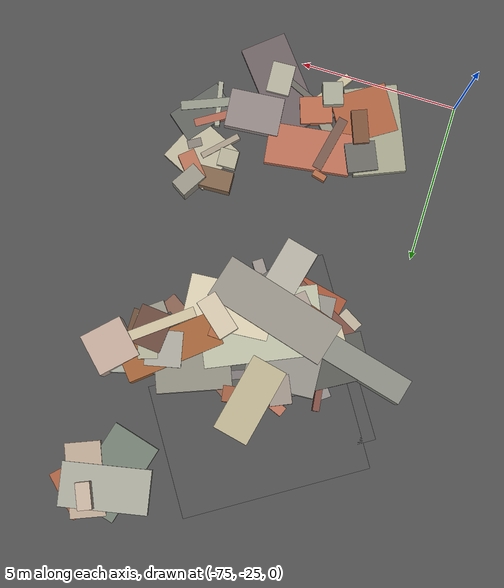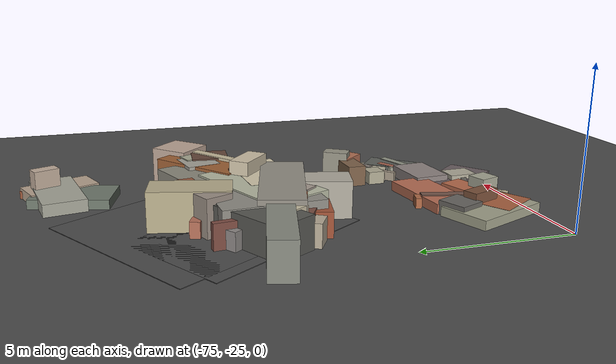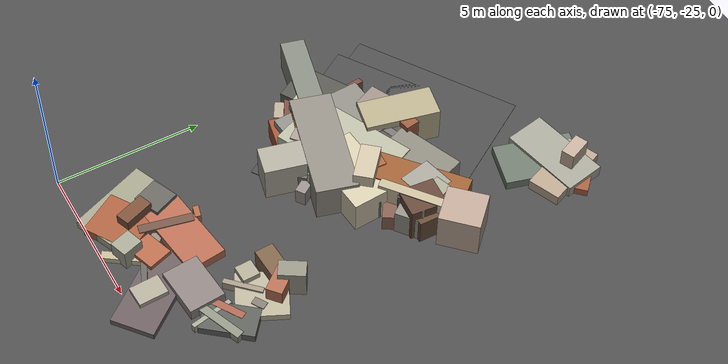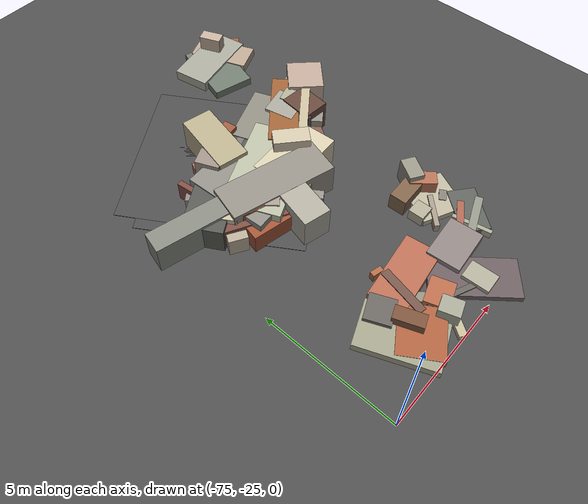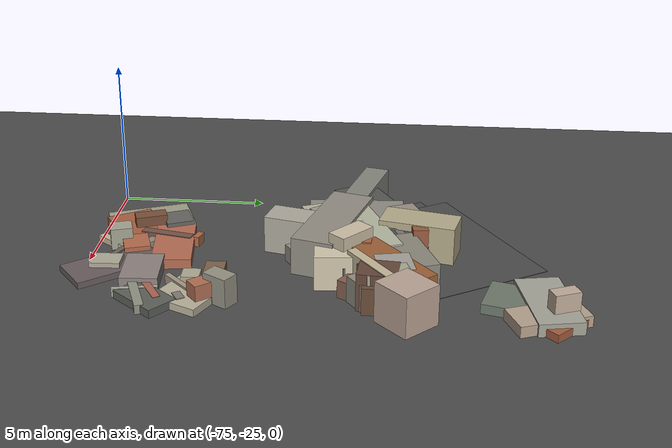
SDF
<sdf version="1.6">
 <world name="navitas_arena">
  <model name="ground_plane">
   <static>true</static>
   <link name="link">
    <collision name="collision">
     <geometry><plane><normal>0 0 1</normal><size>400 400</size></plane></geometry>
     <surface><friction><ode><mu>0.800</mu><mu2>0.800</mu2></ode></friction></surface>
    </collision>
    <visual name="visual">
     <cast_shadows>false</cast_shadows>
     <geometry><plane><normal>0 0 1</normal><size>400 400</size></plane></geometry>
     <material>
      <specular>0.04 0.04 0.04 1</specular>
      <script>
       <uri>file://media/materials/scripts/navitas_asphalt.material</uri>
       <name>Navitas/RealArenaAsphalt</name>
      </script>
     </material>
    </visual>
   </link>
  </model>
  <model name="road_kolay_3_6">
   <static>true</static>
   <pose>-72.310 -15.783 0.040 0 0 0.566</pose>
   <link name="link">
    <collision name="col"><geometry><box><size>3.820 6.000 0.020</size></box></geometry></collision>
    <visual name="vis">
     <geometry><box><size>3.820 6.000 0.020</size></box></geometry>
     <material>
      <specular>0.04 0.04 0.04 1</specular>
      <script>
       <uri>file://media/materials/scripts/navitas_asphalt.material</uri>
       <name>Navitas/RealArenaAsphalt</name>
      </script>
     </material>
    </visual>
   </link>
  </model>
  <model name="road_kolay_3_7">
   <static>true</static>
   <pose>-71.950 -13.587 0.040 0 0 2.124</pose>
   <link name="link">
    <collision name="col"><geometry><box><size>4.221 6.000 0.020</size></box></geometry></collision>
    <visual name="vis">
     <geometry><box><size>4.221 6.000 0.020</size></box></geometry>
     <material>
      <specular>0.04 0.04 0.04 1</specular>
      <script>
       <uri>file://media/materials/scripts/navitas_asphalt.material</uri>
       <name>Navitas/RealArenaAsphalt</name>
      </script>
     </material>
    </visual>
   </link>
  </model>
  <model name="blk_kolay_3_0_0">
   <static>true</static>
   <pose>-71.553 -16.028 0.000 0 0 0</pose>
   <link name="link">
    <collision name="col_0">
     <pose>1.127 1.251 0.525 0.000 0.000 3.500</pose>
     <geometry><box><size>2.705 0.271 1.051</size></box></geometry>
    </collision>
    <visual name="vis_0">
     <pose>1.127 1.251 0.525 0.000 0.000 3.500</pose>
     <geometry><box><size>2.705 0.271 1.051</size></box></geometry>
     <material>
      <ambient>0.44 0.42 0.42 1</ambient>
      <diffuse>0.48 0.45 0.45 1</diffuse>
      <specular>0.05 0.05 0.045 1</specular>
     </material>
    </visual>
    <collision name="col_1">
     <pose>-0.286 -1.756 0.316 0.000 0.000 3.016</pose>
     <geometry><box><size>0.677 0.254 0.632</size></box></geometry>
    </collision>
    <visual name="vis_1">
     <pose>-0.286 -1.756 0.316 0.000 0.000 3.016</pose>
     <geometry><box><size>0.677 0.254 0.632</size></box></geometry>
     <material>
      <ambient>0.54 0.53 0.50 1</ambient>
      <diffuse>0.58 0.57 0.54 1</diffuse>
      <specular>0.05 0.05 0.045 1</specular>
     </material>
    </visual>
    <collision name="col_2">
     <pose>1.367 -1.012 0.504 0.000 0.000 3.010</pose>
     <geometry><box><size>0.946 1.237 1.007</size></box></geometry>
    </collision>
    <visual name="vis_2">
     <pose>1.367 -1.012 0.504 0.000 0.000 3.010</pose>
     <geometry><box><size>0.946 1.237 1.007</size></box></geometry>
     <material>
      <ambient>0.38 0.25 0.22 1</ambient>
      <diffuse>0.41 0.27 0.24 1</diffuse>
      <specular>0.05 0.05 0.045 1</specular>
     </material>
    </visual>
    <collision name="col_3">
     <pose>0.964 0.065 0.528 0.000 0.000 2.479</pose>
     <geometry><box><size>1.818 0.357 1.056</size></box></geometry>
    </collision>
    <visual name="vis_3">
     <pose>0.964 0.065 0.528 0.000 0.000 2.479</pose>
     <geometry><box><size>1.818 0.357 1.056</size></box></geometry>
     <material>
      <ambient>0.63 0.60 0.55 1</ambient>
      <diffuse>0.68 0.65 0.59 1</diffuse>
      <specular>0.05 0.05 0.045 1</specular>
     </material>
    </visual>
    <collision name="col_4">
     <pose>-0.659 1.186 0.632 0.000 0.000 3.557</pose>
     <geometry><box><size>0.686 0.898 1.264</size></box></geometry>
    </collision>
    <visual name="vis_4">
     <pose>-0.659 1.186 0.632 0.000 0.000 3.557</pose>
     <geometry><box><size>0.686 0.898 1.264</size></box></geometry>
     <material>
      <ambient>0.57 0.52 0.48 1</ambient>
      <diffuse>0.61 0.56 0.52 1</diffuse>
      <specular>0.05 0.05 0.045 1</specular>
     </material>
    </visual>
    <collision name="col_5">
     <pose>1.459 -0.228 0.559 0.000 0.000 1.364</pose>
     <geometry><box><size>0.659 0.351 1.118</size></box></geometry>
    </collision>
    <visual name="vis_5">
     <pose>1.459 -0.228 0.559 0.000 0.000 1.364</pose>
     <geometry><box><size>0.659 0.351 1.118</size></box></geometry>
     <material>
      <ambient>0.60 0.59 0.56 1</ambient>
      <diffuse>0.65 0.64 0.60 1</diffuse>
      <specular>0.05 0.05 0.045 1</specular>
     </material>
    </visual>
    <collision name="col_6">
     <pose>1.529 -0.818 0.570 0.000 0.000 3.211</pose>
     <geometry><box><size>2.683 1.547 1.141</size></box></geometry>
    </collision>
    <visual name="vis_6">
     <pose>1.529 -0.818 0.570 0.000 0.000 3.211</pose>
     <geometry><box><size>2.683 1.547 1.141</size></box></geometry>
     <material>
      <ambient>0.76 0.73 0.63 1</ambient>
      <diffuse>0.83 0.79 0.68 1</diffuse>
      <specular>0.05 0.05 0.045 1</specular>
     </material>
    </visual>
    <collision name="col_7">
     <pose>-0.768 1.701 0.280 0.000 0.000 2.750</pose>
     <geometry><box><size>0.445 0.322 0.559</size></box></geometry>
    </collision>
    <visual name="vis_7">
     <pose>-0.768 1.701 0.280 0.000 0.000 2.750</pose>
     <geometry><box><size>0.445 0.322 0.559</size></box></geometry>
     <material>
      <ambient>0.66 0.41 0.32 1</ambient>
      <diffuse>0.71 0.44 0.35 1</diffuse>
      <specular>0.05 0.05 0.045 1</specular>
     </material>
    </visual>
   </link>
  </model>
  <model name="blk_kolay_3_0_1">
   <static>true</static>
   <pose>-70.984 -16.722 0.000 0 0 0</pose>
   <link name="link">
    <collision name="col_0">
     <pose>0.410 0.645 0.484 0.000 0.000 0.836</pose>
     <geometry><box><size>3.100 1.603 0.968</size></box></geometry>
    </collision>
    <visual name="vis_0">
     <pose>0.410 0.645 0.484 0.000 0.000 0.836</pose>
     <geometry><box><size>3.100 1.603 0.968</size></box></geometry>
     <material>
      <ambient>0.60 0.56 0.53 1</ambient>
      <diffuse>0.65 0.61 0.57 1</diffuse>
      <specular>0.05 0.05 0.045 1</specular>
     </material>
    </visual>
    <collision name="col_1">
     <pose>1.084 -0.410 0.533 0.000 0.000 -0.488</pose>
     <geometry><box><size>0.261 0.567 1.067</size></box></geometry>
    </collision>
    <visual name="vis_1">
     <pose>1.084 -0.410 0.533 0.000 0.000 -0.488</pose>
     <geometry><box><size>0.261 0.567 1.067</size></box></geometry>
     <material>
      <ambient>0.64 0.62 0.54 1</ambient>
      <diffuse>0.70 0.67 0.58 1</diffuse>
      <specular>0.05 0.05 0.045 1</specular>
     </material>
    </visual>
    <collision name="col_2">
     <pose>0.041 -0.503 0.348 0.000 0.000 0.858</pose>
     <geometry><box><size>2.755 1.544 0.695</size></box></geometry>
    </collision>
    <visual name="vis_2">
     <pose>0.041 -0.503 0.348 0.000 0.000 0.858</pose>
     <geometry><box><size>2.755 1.544 0.695</size></box></geometry>
     <material>
      <ambient>0.39 0.39 0.36 1</ambient>
      <diffuse>0.42 0.42 0.39 1</diffuse>
      <specular>0.05 0.05 0.045 1</specular>
     </material>
    </visual>
    <collision name="col_3">
     <pose>0.092 -0.258 0.503 0.000 0.000 1.359</pose>
     <geometry><box><size>1.287 1.053 1.006</size></box></geometry>
    </collision>
    <visual name="vis_3">
     <pose>0.092 -0.258 0.503 0.000 0.000 1.359</pose>
     <geometry><box><size>1.287 1.053 1.006</size></box></geometry>
     <material>
      <ambient>0.54 0.50 0.47 1</ambient>
      <diffuse>0.59 0.54 0.51 1</diffuse>
      <specular>0.05 0.05 0.045 1</specular>
     </material>
    </visual>
    <collision name="col_4">
     <pose>1.096 0.347 0.373 0.000 0.000 1.330</pose>
     <geometry><box><size>0.263 0.320 0.746</size></box></geometry>
    </collision>
    <visual name="vis_4">
     <pose>1.096 0.347 0.373 0.000 0.000 1.330</pose>
     <geometry><box><size>0.263 0.320 0.746</size></box></geometry>
     <material>
      <ambient>0.70 0.61 0.53 1</ambient>
      <diffuse>0.75 0.66 0.58 1</diffuse>
      <specular>0.05 0.05 0.045 1</specular>
     </material>
    </visual>
    <collision name="col_5">
     <pose>-0.385 0.287 0.281 0.000 0.000 1.505</pose>
     <geometry><box><size>3.215 1.407 0.561</size></box></geometry>
    </collision>
    <visual name="vis_5">
     <pose>-0.385 0.287 0.281 0.000 0.000 1.505</pose>
     <geometry><box><size>3.215 1.407 0.561</size></box></geometry>
     <material>
      <ambient>0.43 0.31 0.24 1</ambient>
      <diffuse>0.46 0.34 0.25 1</diffuse>
      <specular>0.05 0.05 0.045 1</specular>
     </material>
    </visual>
    <collision name="col_6">
     <pose>-0.348 -1.217 0.625 0.000 0.000 1.329</pose>
     <geometry><box><size>2.751 1.037 1.251</size></box></geometry>
    </collision>
    <visual name="vis_6">
     <pose>-0.348 -1.217 0.625 0.000 0.000 1.329</pose>
     <geometry><box><size>2.751 1.037 1.251</size></box></geometry>
     <material>
      <ambient>0.63 0.62 0.57 1</ambient>
      <diffuse>0.69 0.67 0.62 1</diffuse>
      <specular>0.05 0.05 0.045 1</specular>
     </material>
    </visual>
    <collision name="col_7">
     <pose>0.455 -1.173 0.493 0.000 0.000 1.824</pose>
     <geometry><box><size>0.388 0.398 0.987</size></box></geometry>
    </collision>
    <visual name="vis_7">
     <pose>0.455 -1.173 0.493 0.000 0.000 1.824</pose>
     <geometry><box><size>0.388 0.398 0.987</size></box></geometry>
     <material>
      <ambient>0.65 0.62 0.54 1</ambient>
      <diffuse>0.71 0.67 0.58 1</diffuse>
      <specular>0.05 0.05 0.045 1</specular>
     </material>
    </visual>
   </link>
  </model>
  <model name="blk_kolay_3_0_2">
   <static>true</static>
   <pose>-72.689 -16.175 0.000 0 0 0</pose>
   <link name="link">
    <collision name="col_0">
     <pose>0.570 -1.505 0.596 0.000 0.000 2.264</pose>
     <geometry><box><size>0.504 0.363 1.193</size></box></geometry>
    </collision>
    <visual name="vis_0">
     <pose>0.570 -1.505 0.596 0.000 0.000 2.264</pose>
     <geometry><box><size>0.504 0.363 1.193</size></box></geometry>
     <material>
      <ambient>0.61 0.57 0.53 1</ambient>
      <diffuse>0.66 0.61 0.57 1</diffuse>
      <specular>0.05 0.05 0.045 1</specular>
     </material>
    </visual>
    <collision name="col_1">
     <pose>-0.681 0.838 0.425 0.000 0.000 1.695</pose>
     <geometry><box><size>1.552 0.205 0.850</size></box></geometry>
    </collision>
    <visual name="vis_1">
     <pose>-0.681 0.838 0.425 0.000 0.000 1.695</pose>
     <geometry><box><size>1.552 0.205 0.850</size></box></geometry>
     <material>
      <ambient>0.46 0.28 0.24 1</ambient>
      <diffuse>0.49 0.30 0.26 1</diffuse>
      <specular>0.05 0.05 0.045 1</specular>
     </material>
    </visual>
    <collision name="col_2">
     <pose>-1.009 -1.383 0.369 0.000 0.000 1.034</pose>
     <geometry><box><size>0.324 0.688 0.738</size></box></geometry>
    </collision>
    <visual name="vis_2">
     <pose>-1.009 -1.383 0.369 0.000 0.000 1.034</pose>
     <geometry><box><size>0.324 0.688 0.738</size></box></geometry>
     <material>
      <ambient>0.66 0.62 0.54 1</ambient>
      <diffuse>0.72 0.67 0.59 1</diffuse>
      <specular>0.05 0.05 0.045 1</specular>
     </material>
    </visual>
    <collision name="col_3">
     <pose>0.739 -0.838 0.285 0.000 0.000 2.015</pose>
     <geometry><box><size>1.577 0.692 0.569</size></box></geometry>
    </collision>
    <visual name="vis_3">
     <pose>0.739 -0.838 0.285 0.000 0.000 2.015</pose>
     <geometry><box><size>1.577 0.692 0.569</size></box></geometry>
     <material>
      <ambient>0.28 0.31 0.28 1</ambient>
      <diffuse>0.30 0.33 0.30 1</diffuse>
      <specular>0.05 0.05 0.045 1</specular>
     </material>
    </visual>
    <collision name="col_4">
     <pose>-0.052 0.621 0.393 0.000 0.000 2.695</pose>
     <geometry><box><size>0.629 0.552 0.785</size></box></geometry>
    </collision>
    <visual name="vis_4">
     <pose>-0.052 0.621 0.393 0.000 0.000 2.695</pose>
     <geometry><box><size>0.629 0.552 0.785</size></box></geometry>
     <material>
      <ambient>0.37 0.40 0.35 1</ambient>
      <diffuse>0.40 0.43 0.37 1</diffuse>
      <specular>0.05 0.05 0.045 1</specular>
     </material>
    </visual>
    <collision name="col_5">
     <pose>-0.797 -0.847 0.547 0.000 0.000 2.121</pose>
     <geometry><box><size>0.539 0.249 1.094</size></box></geometry>
    </collision>
    <visual name="vis_5">
     <pose>-0.797 -0.847 0.547 0.000 0.000 2.121</pose>
     <geometry><box><size>0.539 0.249 1.094</size></box></geometry>
     <material>
      <ambient>0.73 0.69 0.59 1</ambient>
      <diffuse>0.79 0.75 0.64 1</diffuse>
      <specular>0.05 0.05 0.045 1</specular>
     </material>
    </visual>
    <collision name="col_6">
     <pose>0.861 -0.559 0.300 0.000 0.000 2.732</pose>
     <geometry><box><size>1.709 0.281 0.599</size></box></geometry>
    </collision>
    <visual name="vis_6">
     <pose>0.861 -0.559 0.300 0.000 0.000 2.732</pose>
     <geometry><box><size>1.709 0.281 0.599</size></box></geometry>
     <material>
      <ambient>0.53 0.51 0.48 1</ambient>
      <diffuse>0.57 0.55 0.52 1</diffuse>
      <specular>0.05 0.05 0.045 1</specular>
     </material>
    </visual>
   </link>
  </model>
  <model name="blk_kolay_3_0_3">
   <static>true</static>
   <pose>-71.087 -15.927 0.000 0 0 0</pose>
   <link name="link">
    <collision name="col_0">
     <pose>1.318 -0.535 0.793 0.000 0.000 0.853</pose>
     <geometry><box><size>0.656 1.318 1.586</size></box></geometry>
    </collision>
    <visual name="vis_0">
     <pose>1.318 -0.535 0.793 0.000 0.000 0.853</pose>
     <geometry><box><size>0.656 1.318 1.586</size></box></geometry>
     <material>
      <ambient>0.75 0.70 0.61 1</ambient>
      <diffuse>0.81 0.76 0.66 1</diffuse>
      <specular>0.05 0.05 0.045 1</specular>
     </material>
    </visual>
    <collision name="col_1">
     <pose>-0.801 -0.398 0.453 0.000 0.000 2.889</pose>
     <geometry><box><size>0.636 0.653 0.906</size></box></geometry>
    </collision>
    <visual name="vis_1">
     <pose>-0.801 -0.398 0.453 0.000 0.000 2.889</pose>
     <geometry><box><size>0.636 0.653 0.906</size></box></geometry>
     <material>
      <ambient>0.43 0.30 0.23 1</ambient>
      <diffuse>0.46 0.33 0.25 1</diffuse>
      <specular>0.05 0.05 0.045 1</specular>
     </material>
    </visual>
    <collision name="col_2">
     <pose>-1.197 -1.096 0.439 0.000 0.000 2.647</pose>
     <geometry><box><size>3.046 1.943 0.879</size></box></geometry>
    </collision>
    <visual name="vis_2">
     <pose>-1.197 -1.096 0.439 0.000 0.000 2.647</pose>
     <geometry><box><size>3.046 1.943 0.879</size></box></geometry>
     <material>
      <ambient>0.45 0.29 0.24 1</ambient>
      <diffuse>0.48 0.31 0.26 1</diffuse>
      <specular>0.05 0.05 0.045 1</specular>
     </material>
    </visual>
    <collision name="col_3">
     <pose>-0.981 -0.480 0.543 0.000 0.000 1.627</pose>
     <geometry><box><size>3.155 2.226 1.086</size></box></geometry>
    </collision>
    <visual name="vis_3">
     <pose>-0.981 -0.480 0.543 0.000 0.000 1.627</pose>
     <geometry><box><size>3.155 2.226 1.086</size></box></geometry>
     <material>
      <ambient>0.52 0.51 0.48 1</ambient>
      <diffuse>0.56 0.55 0.52 1</diffuse>
      <specular>0.05 0.05 0.045 1</specular>
     </material>
    </visual>
    <collision name="col_4">
     <pose>1.426 0.616 0.299 0.000 0.000 2.567</pose>
     <geometry><box><size>3.965 0.943 0.598</size></box></geometry>
    </collision>
    <visual name="vis_4">
     <pose>1.426 0.616 0.299 0.000 0.000 2.567</pose>
     <geometry><box><size>3.965 0.943 0.598</size></box></geometry>
     <material>
      <ambient>0.48 0.35 0.29 1</ambient>
      <diffuse>0.52 0.37 0.31 1</diffuse>
      <specular>0.05 0.05 0.045 1</specular>
     </material>
    </visual>
    <collision name="col_5">
     <pose>0.003 1.578 0.633 0.000 0.000 3.299</pose>
     <geometry><box><size>1.019 0.493 1.266</size></box></geometry>
    </collision>
    <visual name="vis_5">
     <pose>0.003 1.578 0.633 0.000 0.000 3.299</pose>
     <geometry><box><size>1.019 0.493 1.266</size></box></geometry>
     <material>
      <ambient>0.57 0.33 0.23 1</ambient>
      <diffuse>0.61 0.36 0.25 1</diffuse>
      <specular>0.05 0.05 0.045 1</specular>
     </material>
    </visual>
    <collision name="col_6">
     <pose>-0.031 -0.628 0.567 0.000 0.000 3.552</pose>
     <geometry><box><size>3.730 2.158 1.135</size></box></geometry>
    </collision>
    <visual name="vis_6">
     <pose>-0.031 -0.628 0.567 0.000 0.000 3.552</pose>
     <geometry><box><size>3.730 2.158 1.135</size></box></geometry>
     <material>
      <ambient>0.67 0.67 0.59 1</ambient>
      <diffuse>0.72 0.73 0.64 1</diffuse>
      <specular>0.05 0.05 0.045 1</specular>
     </material>
    </visual>
    <collision name="col_7">
     <pose>-0.359 1.622 0.649 0.000 0.000 1.349</pose>
     <geometry><box><size>2.500 1.143 1.299</size></box></geometry>
    </collision>
    <visual name="vis_7">
     <pose>-0.359 1.622 0.649 0.000 0.000 1.349</pose>
     <geometry><box><size>2.500 1.143 1.299</size></box></geometry>
     <material>
      <ambient>0.67 0.63 0.51 1</ambient>
      <diffuse>0.72 0.68 0.55 1</diffuse>
      <specular>0.05 0.05 0.045 1</specular>
     </material>
    </visual>
    <collision name="col_8">
     <pose>-0.306 -1.213 0.628 0.000 0.000 2.864</pose>
     <geometry><box><size>3.978 1.403 1.255</size></box></geometry>
    </collision>
    <visual name="vis_8">
     <pose>-0.306 -1.213 0.628 0.000 0.000 2.864</pose>
     <geometry><box><size>3.978 1.403 1.255</size></box></geometry>
     <material>
      <ambient>0.53 0.52 0.48 1</ambient>
      <diffuse>0.58 0.56 0.52 1</diffuse>
      <specular>0.05 0.05 0.045 1</specular>
     </material>
    </visual>
   </link>
  </model>
  <model name="blk_kolay_3_0_5">
   <static>true</static>
   <pose>-67.610 -15.198 0.000 0 0 0</pose>
   <link name="link">
    <collision name="col_0">
     <pose>-0.155 -0.375 0.587 0.000 0.000 1.346</pose>
     <geometry><box><size>0.578 0.487 1.174</size></box></geometry>
    </collision>
    <visual name="vis_0">
     <pose>-0.155 -0.375 0.587 0.000 0.000 1.346</pose>
     <geometry><box><size>0.578 0.487 1.174</size></box></geometry>
     <material>
      <ambient>0.62 0.33 0.23 1</ambient>
      <diffuse>0.66 0.36 0.25 1</diffuse>
      <specular>0.05 0.05 0.045 1</specular>
     </material>
    </visual>
    <collision name="col_1">
     <pose>-0.553 -0.516 0.635 0.000 0.000 3.794</pose>
     <geometry><box><size>2.273 0.321 1.269</size></box></geometry>
    </collision>
    <visual name="vis_1">
     <pose>-0.553 -0.516 0.635 0.000 0.000 3.794</pose>
     <geometry><box><size>2.273 0.321 1.269</size></box></geometry>
     <material>
      <ambient>0.72 0.68 0.57 1</ambient>
      <diffuse>0.78 0.73 0.61 1</diffuse>
      <specular>0.05 0.05 0.045 1</specular>
     </material>
    </visual>
    <collision name="col_2">
     <pose>0.718 0.541 0.667 0.000 0.000 3.919</pose>
     <geometry><box><size>1.350 1.324 1.335</size></box></geometry>
    </collision>
    <visual name="vis_2">
     <pose>0.718 0.541 0.667 0.000 0.000 3.919</pose>
     <geometry><box><size>1.350 1.324 1.335</size></box></geometry>
     <material>
      <ambient>0.68 0.60 0.55 1</ambient>
      <diffuse>0.74 0.65 0.59 1</diffuse>
      <specular>0.05 0.05 0.045 1</specular>
     </material>
    </visual>
    <collision name="col_3">
     <pose>-0.403 0.320 0.549 0.000 0.000 1.557</pose>
     <geometry><box><size>0.455 0.299 1.099</size></box></geometry>
    </collision>
    <visual name="vis_3">
     <pose>-0.403 0.320 0.549 0.000 0.000 1.557</pose>
     <geometry><box><size>0.455 0.299 1.099</size></box></geometry>
     <material>
      <ambient>0.49 0.32 0.29 1</ambient>
      <diffuse>0.52 0.34 0.31 1</diffuse>
      <specular>0.05 0.05 0.045 1</specular>
     </material>
    </visual>
    <collision name="col_4">
     <pose>-0.864 0.141 0.594 0.000 0.000 1.783</pose>
     <geometry><box><size>1.112 1.131 1.188</size></box></geometry>
    </collision>
    <visual name="vis_4">
     <pose>-0.864 0.141 0.594 0.000 0.000 1.783</pose>
     <geometry><box><size>1.112 1.131 1.188</size></box></geometry>
     <material>
      <ambient>0.60 0.60 0.56 1</ambient>
      <diffuse>0.65 0.64 0.60 1</diffuse>
      <specular>0.05 0.05 0.045 1</specular>
     </material>
    </visual>
    <collision name="col_5">
     <pose>-0.287 -0.071 0.613 0.000 0.000 1.875</pose>
     <geometry><box><size>1.376 0.615 1.227</size></box></geometry>
    </collision>
    <visual name="vis_5">
     <pose>-0.287 -0.071 0.613 0.000 0.000 1.875</pose>
     <geometry><box><size>1.376 0.615 1.227</size></box></geometry>
     <material>
      <ambient>0.62 0.62 0.54 1</ambient>
      <diffuse>0.67 0.67 0.58 1</diffuse>
      <specular>0.05 0.05 0.045 1</specular>
     </material>
    </visual>
    <collision name="col_6">
     <pose>-0.318 -0.327 0.618 0.000 0.000 1.478</pose>
     <geometry><box><size>1.220 1.041 1.235</size></box></geometry>
    </collision>
    <visual name="vis_6">
     <pose>-0.318 -0.327 0.618 0.000 0.000 1.478</pose>
     <geometry><box><size>1.220 1.041 1.235</size></box></geometry>
     <material>
      <ambient>0.37 0.26 0.21 1</ambient>
      <diffuse>0.40 0.28 0.23 1</diffuse>
      <specular>0.05 0.05 0.045 1</specular>
     </material>
    </visual>
    <collision name="col_7">
     <pose>-0.196 -0.367 0.446 0.000 0.000 1.556</pose>
     <geometry><box><size>0.851 1.169 0.891</size></box></geometry>
    </collision>
    <visual name="vis_7">
     <pose>-0.196 -0.367 0.446 0.000 0.000 1.556</pose>
     <geometry><box><size>0.851 1.169 0.891</size></box></geometry>
     <material>
      <ambient>0.38 0.28 0.21 1</ambient>
      <diffuse>0.41 0.30 0.22 1</diffuse>
      <specular>0.05 0.05 0.045 1</specular>
     </material>
    </visual>
    <collision name="col_8">
     <pose>-0.340 0.822 0.350 0.000 0.000 1.287</pose>
     <geometry><box><size>0.669 0.373 0.701</size></box></geometry>
    </collision>
    <visual name="vis_8">
     <pose>-0.340 0.822 0.350 0.000 0.000 1.287</pose>
     <geometry><box><size>0.669 0.373 0.701</size></box></geometry>
     <material>
      <ambient>0.34 0.36 0.35 1</ambient>
      <diffuse>0.37 0.39 0.38 1</diffuse>
      <specular>0.05 0.05 0.045 1</specular>
     </material>
    </visual>
    <collision name="col_9">
     <pose>-0.817 0.449 0.456 0.000 0.000 3.391</pose>
     <geometry><box><size>3.078 0.973 0.912</size></box></geometry>
    </collision>
    <visual name="vis_9">
     <pose>-0.817 0.449 0.456 0.000 0.000 3.391</pose>
     <geometry><box><size>3.078 0.973 0.912</size></box></geometry>
     <material>
      <ambient>0.59 0.59 0.55 1</ambient>
      <diffuse>0.63 0.64 0.59 1</diffuse>
      <specular>0.05 0.05 0.045 1</specular>
     </material>
    </visual>
   </link>
  </model>
  <model name="blk_kolay_3_0_7">
   <static>true</static>
   <pose>-68.935 -15.774 0.000 0 0 0</pose>
   <link name="link">
    <collision name="col_0">
     <pose>0.269 0.668 0.408 0.000 0.000 1.768</pose>
     <geometry><box><size>0.643 0.246 0.817</size></box></geometry>
    </collision>
    <visual name="vis_0">
     <pose>0.269 0.668 0.408 0.000 0.000 1.768</pose>
     <geometry><box><size>0.643 0.246 0.817</size></box></geometry>
     <material>
      <ambient>0.61 0.32 0.25 1</ambient>
      <diffuse>0.66 0.35 0.27 1</diffuse>
      <specular>0.05 0.05 0.045 1</specular>
     </material>
    </visual>
    <collision name="col_1">
     <pose>0.492 -0.030 0.569 0.000 0.000 2.549</pose>
     <geometry><box><size>0.626 0.522 1.139</size></box></geometry>
    </collision>
    <visual name="vis_1">
     <pose>0.492 -0.030 0.569 0.000 0.000 2.549</pose>
     <geometry><box><size>0.626 0.522 1.139</size></box></geometry>
     <material>
      <ambient>0.29 0.29 0.27 1</ambient>
      <diffuse>0.31 0.31 0.29 1</diffuse>
      <specular>0.05 0.05 0.045 1</specular>
     </material>
    </visual>
    <collision name="col_2">
     <pose>1.077 -0.223 0.443 0.000 0.000 3.784</pose>
     <geometry><box><size>0.828 0.592 0.886</size></box></geometry>
    </collision>
    <visual name="vis_2">
     <pose>1.077 -0.223 0.443 0.000 0.000 3.784</pose>
     <geometry><box><size>0.828 0.592 0.886</size></box></geometry>
     <material>
      <ambient>0.53 0.52 0.48 1</ambient>
      <diffuse>0.57 0.56 0.51 1</diffuse>
      <specular>0.05 0.05 0.045 1</specular>
     </material>
    </visual>
    <collision name="col_3">
     <pose>-0.931 -0.279 0.611 0.000 0.000 1.515</pose>
     <geometry><box><size>0.483 0.427 1.222</size></box></geometry>
    </collision>
    <visual name="vis_3">
     <pose>-0.931 -0.279 0.611 0.000 0.000 1.515</pose>
     <geometry><box><size>0.483 0.427 1.222</size></box></geometry>
     <material>
      <ambient>0.61 0.37 0.24 1</ambient>
      <diffuse>0.66 0.40 0.26 1</diffuse>
      <specular>0.05 0.05 0.045 1</specular>
     </material>
    </visual>
    <collision name="col_4">
     <pose>-0.077 -0.947 0.385 0.000 0.000 3.852</pose>
     <geometry><box><size>0.683 0.290 0.769</size></box></geometry>
    </collision>
    <visual name="vis_4">
     <pose>-0.077 -0.947 0.385 0.000 0.000 3.852</pose>
     <geometry><box><size>0.683 0.290 0.769</size></box></geometry>
     <material>
      <ambient>0.45 0.46 0.42 1</ambient>
      <diffuse>0.48 0.50 0.45 1</diffuse>
      <specular>0.05 0.05 0.045 1</specular>
     </material>
    </visual>
    <collision name="col_5">
     <pose>-0.521 0.937 0.538 0.000 0.000 3.505</pose>
     <geometry><box><size>2.324 1.610 1.076</size></box></geometry>
    </collision>
    <visual name="vis_5">
     <pose>-0.521 0.937 0.538 0.000 0.000 3.505</pose>
     <geometry><box><size>2.324 1.610 1.076</size></box></geometry>
     <material>
      <ambient>0.51 0.50 0.45 1</ambient>
      <diffuse>0.55 0.54 0.49 1</diffuse>
      <specular>0.05 0.05 0.045 1</specular>
     </material>
    </visual>
    <collision name="col_6">
     <pose>0.288 0.615 0.591 0.000 0.000 3.826</pose>
     <geometry><box><size>3.100 1.068 1.182</size></box></geometry>
    </collision>
    <visual name="vis_6">
     <pose>0.288 0.615 0.591 0.000 0.000 3.826</pose>
     <geometry><box><size>3.100 1.068 1.182</size></box></geometry>
     <material>
      <ambient>0.57 0.35 0.20 1</ambient>
      <diffuse>0.62 0.38 0.21 1</diffuse>
      <specular>0.05 0.05 0.045 1</specular>
     </material>
    </visual>
    <collision name="col_7">
     <pose>-0.352 0.443 0.373 0.000 0.000 3.463</pose>
     <geometry><box><size>4.259 1.015 0.746</size></box></geometry>
    </collision>
    <visual name="vis_7">
     <pose>-0.352 0.443 0.373 0.000 0.000 3.463</pose>
     <geometry><box><size>4.259 1.015 0.746</size></box></geometry>
     <material>
      <ambient>0.56 0.56 0.49 1</ambient>
      <diffuse>0.61 0.60 0.53 1</diffuse>
      <specular>0.05 0.05 0.045 1</specular>
     </material>
    </visual>
   </link>
  </model>
  <model name="blk_kolay_3_0_8">
   <static>true</static>
   <pose>-72.564 -16.231 0.000 0 0 0</pose>
   <link name="link">
    <collision name="col_0">
     <pose>-0.958 1.067 0.315 0.000 0.000 0.646</pose>
     <geometry><box><size>0.411 0.371 0.631</size></box></geometry>
    </collision>
    <visual name="vis_0">
     <pose>-0.958 1.067 0.315 0.000 0.000 0.646</pose>
     <geometry><box><size>0.411 0.371 0.631</size></box></geometry>
     <material>
      <ambient>0.51 0.49 0.48 1</ambient>
      <diffuse>0.55 0.53 0.52 1</diffuse>
      <specular>0.05 0.05 0.045 1</specular>
     </material>
    </visual>
    <collision name="col_1">
     <pose>-0.037 0.627 0.522 0.000 0.000 0.525</pose>
     <geometry><box><size>4.241 1.456 1.045</size></box></geometry>
    </collision>
    <visual name="vis_1">
     <pose>-0.037 0.627 0.522 0.000 0.000 0.525</pose>
     <geometry><box><size>4.241 1.456 1.045</size></box></geometry>
     <material>
      <ambient>0.32 0.31 0.29 1</ambient>
      <diffuse>0.34 0.34 0.32 1</diffuse>
      <specular>0.05 0.05 0.045 1</specular>
     </material>
    </visual>
    <collision name="col_2">
     <pose>1.184 -0.876 0.289 0.000 0.000 2.163</pose>
     <geometry><box><size>3.454 0.351 0.579</size></box></geometry>
    </collision>
    <visual name="vis_2">
     <pose>1.184 -0.876 0.289 0.000 0.000 2.163</pose>
     <geometry><box><size>3.454 0.351 0.579</size></box></geometry>
     <material>
      <ambient>0.55 0.52 0.50 1</ambient>
      <diffuse>0.59 0.56 0.54 1</diffuse>
      <specular>0.05 0.05 0.045 1</specular>
     </material>
    </visual>
    <collision name="col_3">
     <pose>0.420 1.312 0.591 0.000 0.000 0.534</pose>
     <geometry><box><size>0.597 0.568 1.181</size></box></geometry>
    </collision>
    <visual name="vis_3">
     <pose>0.420 1.312 0.591 0.000 0.000 0.534</pose>
     <geometry><box><size>0.597 0.568 1.181</size></box></geometry>
     <material>
      <ambient>0.68 0.64 0.57 1</ambient>
      <diffuse>0.73 0.69 0.61 1</diffuse>
      <specular>0.05 0.05 0.045 1</specular>
     </material>
    </visual>
    <collision name="col_4">
     <pose>0.425 0.999 0.619 0.000 0.000 0.524</pose>
     <geometry><box><size>0.244 0.194 1.238</size></box></geometry>
    </collision>
    <visual name="vis_4">
     <pose>0.425 0.999 0.619 0.000 0.000 0.524</pose>
     <geometry><box><size>0.244 0.194 1.238</size></box></geometry>
     <material>
      <ambient>0.62 0.37 0.25 1</ambient>
      <diffuse>0.67 0.40 0.27 1</diffuse>
      <specular>0.05 0.05 0.045 1</specular>
     </material>
    </visual>
    <collision name="col_5">
     <pose>0.113 -0.794 0.573 0.000 0.000 2.824</pose>
     <geometry><box><size>1.206 1.123 1.146</size></box></geometry>
    </collision>
    <visual name="vis_5">
     <pose>0.113 -0.794 0.573 0.000 0.000 2.824</pose>
     <geometry><box><size>1.206 1.123 1.146</size></box></geometry>
     <material>
      <ambient>0.55 0.31 0.19 1</ambient>
      <diffuse>0.59 0.33 0.20 1</diffuse>
      <specular>0.05 0.05 0.045 1</specular>
     </material>
    </visual>
    <collision name="col_6">
     <pose>-1.386 -0.150 0.580 0.000 0.000 2.887</pose>
     <geometry><box><size>4.032 0.823 1.160</size></box></geometry>
    </collision>
    <visual name="vis_6">
     <pose>-1.386 -0.150 0.580 0.000 0.000 2.887</pose>
     <geometry><box><size>4.032 0.823 1.160</size></box></geometry>
     <material>
      <ambient>0.49 0.50 0.46 1</ambient>
      <diffuse>0.53 0.54 0.50 1</diffuse>
      <specular>0.05 0.05 0.045 1</specular>
     </material>
    </visual>
    <collision name="col_7">
     <pose>0.452 -1.099 0.403 0.000 0.000 2.924</pose>
     <geometry><box><size>2.220 2.068 0.805</size></box></geometry>
    </collision>
    <visual name="vis_7">
     <pose>0.452 -1.099 0.403 0.000 0.000 2.924</pose>
     <geometry><box><size>2.220 2.068 0.805</size></box></geometry>
     <material>
      <ambient>0.58 0.31 0.21 1</ambient>
      <diffuse>0.63 0.33 0.22 1</diffuse>
      <specular>0.05 0.05 0.045 1</specular>
     </material>
    </visual>
    <collision name="col_8">
     <pose>0.921 0.029 0.473 0.000 0.000 0.397</pose>
     <geometry><box><size>0.602 0.613 0.947</size></box></geometry>
    </collision>
    <visual name="vis_8">
     <pose>0.921 0.029 0.473 0.000 0.000 0.397</pose>
     <geometry><box><size>0.602 0.613 0.947</size></box></geometry>
     <material>
      <ambient>0.59 0.59 0.55 1</ambient>
      <diffuse>0.64 0.64 0.60 1</diffuse>
      <specular>0.05 0.05 0.045 1</specular>
     </material>
    </visual>
   </link>
  </model>
  <model name="deb_kolay_118">
   <static>true</static>
   <pose>-67.942 -20.929 0.000 0 0 0</pose>
   <link name="link">
    <collision name="col_0">
     <pose>0.194 -0.375 0.123 0.000 0.000 1.122</pose>
     <geometry><box><size>1.661 1.643 0.246</size></box></geometry>
    </collision>
    <visual name="vis_0">
     <pose>0.194 -0.375 0.123 0.000 0.000 1.122</pose>
     <geometry><box><size>1.661 1.643 0.246</size></box></geometry>
     <material>
      <ambient>0.68 0.64 0.56 1</ambient>
      <diffuse>0.73 0.70 0.61 1</diffuse>
      <specular>0.05 0.05 0.045 1</specular>
     </material>
    </visual>
    <collision name="col_1">
     <pose>-0.669 -0.427 0.220 0.000 0.000 3.170</pose>
     <geometry><box><size>0.593 0.572 0.440</size></box></geometry>
    </collision>
    <visual name="vis_1">
     <pose>-0.669 -0.427 0.220 0.000 0.000 3.170</pose>
     <geometry><box><size>0.593 0.572 0.440</size></box></geometry>
     <material>
      <ambient>0.64 0.62 0.54 1</ambient>
      <diffuse>0.69 0.67 0.58 1</diffuse>
      <specular>0.05 0.05 0.045 1</specular>
     </material>
    </visual>
    <collision name="col_2">
     <pose>0.306 0.193 0.378 0.000 0.000 2.270</pose>
     <geometry><box><size>0.973 0.540 0.756</size></box></geometry>
    </collision>
    <visual name="vis_2">
     <pose>0.306 0.193 0.378 0.000 0.000 2.270</pose>
     <geometry><box><size>0.973 0.540 0.756</size></box></geometry>
     <material>
      <ambient>0.65 0.41 0.30 1</ambient>
      <diffuse>0.70 0.44 0.33 1</diffuse>
      <specular>0.05 0.05 0.045 1</specular>
     </material>
    </visual>
    <collision name="col_3">
     <pose>0.269 0.647 0.483 0.000 0.000 1.010</pose>
     <geometry><box><size>0.880 0.559 0.967</size></box></geometry>
    </collision>
    <visual name="vis_3">
     <pose>0.269 0.647 0.483 0.000 0.000 1.010</pose>
     <geometry><box><size>0.880 0.559 0.967</size></box></geometry>
     <material>
      <ambient>0.55 0.54 0.48 1</ambient>
      <diffuse>0.59 0.58 0.52 1</diffuse>
      <specular>0.05 0.05 0.045 1</specular>
     </material>
    </visual>
    <collision name="col_4">
     <pose>0.479 -0.608 0.138 0.000 0.000 2.116</pose>
     <geometry><box><size>0.267 0.445 0.275</size></box></geometry>
    </collision>
    <visual name="vis_4">
     <pose>0.479 -0.608 0.138 0.000 0.000 2.116</pose>
     <geometry><box><size>0.267 0.445 0.275</size></box></geometry>
     <material>
      <ambient>0.48 0.45 0.42 1</ambient>
      <diffuse>0.52 0.49 0.46 1</diffuse>
      <specular>0.05 0.05 0.045 1</specular>
     </material>
    </visual>
    <collision name="col_5">
     <pose>-0.484 0.346 0.353 0.000 0.000 3.181</pose>
     <geometry><box><size>1.055 0.626 0.707</size></box></geometry>
    </collision>
    <visual name="vis_5">
     <pose>-0.484 0.346 0.353 0.000 0.000 3.181</pose>
     <geometry><box><size>1.055 0.626 0.707</size></box></geometry>
     <material>
      <ambient>0.46 0.36 0.27 1</ambient>
      <diffuse>0.50 0.39 0.29 1</diffuse>
      <specular>0.05 0.05 0.045 1</specular>
     </material>
    </visual>
    <collision name="col_6">
     <pose>-0.319 -0.750 0.158 0.000 0.000 0.784</pose>
     <geometry><box><size>1.313 0.182 0.316</size></box></geometry>
    </collision>
    <visual name="vis_6">
     <pose>-0.319 -0.750 0.158 0.000 0.000 0.784</pose>
     <geometry><box><size>1.313 0.182 0.316</size></box></geometry>
     <material>
      <ambient>0.61 0.56 0.50 1</ambient>
      <diffuse>0.65 0.60 0.53 1</diffuse>
      <specular>0.05 0.05 0.045 1</specular>
     </material>
    </visual>
   </link>
  </model>
  <model name="deb_kolay_131">
   <static>true</static>
   <pose>-67.348 -10.890 0.000 0 0 0</pose>
   <link name="link">
    <collision name="col_0">
     <pose>0.055 0.541 0.132 0.000 0.000 -0.782</pose>
     <geometry><box><size>1.592 1.605 0.263</size></box></geometry>
    </collision>
    <visual name="vis_0">
     <pose>0.055 0.541 0.132 0.000 0.000 -0.782</pose>
     <geometry><box><size>1.592 1.605 0.263</size></box></geometry>
     <material>
      <ambient>0.60 0.34 0.23 1</ambient>
      <diffuse>0.65 0.37 0.25 1</diffuse>
      <specular>0.05 0.05 0.045 1</specular>
     </material>
    </visual>
    <collision name="col_1">
     <pose>-0.587 0.449 0.208 0.000 0.000 0.186</pose>
     <geometry><box><size>2.790 1.408 0.417</size></box></geometry>
    </collision>
    <visual name="vis_1">
     <pose>-0.587 0.449 0.208 0.000 0.000 0.186</pose>
     <geometry><box><size>2.790 1.408 0.417</size></box></geometry>
     <material>
      <ambient>0.61 0.60 0.55 1</ambient>
      <diffuse>0.65 0.65 0.60 1</diffuse>
      <specular>0.05 0.05 0.045 1</specular>
     </material>
    </visual>
    <collision name="col_2">
     <pose>0.066 0.372 0.183 0.000 0.000 -1.193</pose>
     <geometry><box><size>2.327 1.118 0.366</size></box></geometry>
    </collision>
    <visual name="vis_2">
     <pose>0.066 0.372 0.183 0.000 0.000 -1.193</pose>
     <geometry><box><size>2.327 1.118 0.366</size></box></geometry>
     <material>
      <ambient>0.67 0.59 0.52 1</ambient>
      <diffuse>0.72 0.64 0.56 1</diffuse>
      <specular>0.05 0.05 0.045 1</specular>
     </material>
    </visual>
    <collision name="col_3">
     <pose>-0.086 0.820 0.508 0.000 0.000 -1.173</pose>
     <geometry><box><size>0.850 0.454 1.016</size></box></geometry>
    </collision>
    <visual name="vis_3">
     <pose>-0.086 0.820 0.508 0.000 0.000 -1.173</pose>
     <geometry><box><size>0.850 0.454 1.016</size></box></geometry>
     <material>
      <ambient>0.70 0.63 0.57 1</ambient>
      <diffuse>0.76 0.68 0.61 1</diffuse>
      <specular>0.05 0.05 0.045 1</specular>
     </material>
    </visual>
    <collision name="col_4">
     <pose>-0.717 -0.085 0.160 0.000 0.000 1.296</pose>
     <geometry><box><size>2.658 1.571 0.320</size></box></geometry>
    </collision>
    <visual name="vis_4">
     <pose>-0.717 -0.085 0.160 0.000 0.000 1.296</pose>
     <geometry><box><size>2.658 1.571 0.320</size></box></geometry>
     <material>
      <ambient>0.41 0.44 0.40 1</ambient>
      <diffuse>0.44 0.48 0.43 1</diffuse>
      <specular>0.05 0.05 0.045 1</specular>
     </material>
    </visual>
   </link>
  </model>
  <model name="deb_kolay_135">
   <static>true</static>
   <pose>-71.728 -22.402 0.000 0 0 0</pose>
   <link name="link">
    <collision name="col_0">
     <pose>0.181 -0.326 0.179 0.000 0.000 1.357</pose>
     <geometry><box><size>1.778 0.309 0.359</size></box></geometry>
    </collision>
    <visual name="vis_0">
     <pose>0.181 -0.326 0.179 0.000 0.000 1.357</pose>
     <geometry><box><size>1.778 0.309 0.359</size></box></geometry>
     <material>
      <ambient>0.42 0.32 0.26 1</ambient>
      <diffuse>0.46 0.34 0.29 1</diffuse>
      <specular>0.05 0.05 0.045 1</specular>
     </material>
    </visual>
    <collision name="col_1">
     <pose>0.216 0.729 0.171 0.000 0.000 1.323</pose>
     <geometry><box><size>0.194 0.430 0.342</size></box></geometry>
    </collision>
    <visual name="vis_1">
     <pose>0.216 0.729 0.171 0.000 0.000 1.323</pose>
     <geometry><box><size>0.194 0.430 0.342</size></box></geometry>
     <material>
      <ambient>0.64 0.39 0.26 1</ambient>
      <diffuse>0.69 0.42 0.28 1</diffuse>
      <specular>0.05 0.05 0.045 1</specular>
     </material>
    </visual>
    <collision name="col_2">
     <pose>0.015 -0.305 0.116 0.000 0.000 0.619</pose>
     <geometry><box><size>2.288 0.128 0.231</size></box></geometry>
    </collision>
    <visual name="vis_2">
     <pose>0.015 -0.305 0.116 0.000 0.000 0.619</pose>
     <geometry><box><size>2.288 0.128 0.231</size></box></geometry>
     <material>
      <ambient>0.74 0.69 0.60 1</ambient>
      <diffuse>0.80 0.75 0.65 1</diffuse>
      <specular>0.05 0.05 0.045 1</specular>
     </material>
    </visual>
    <collision name="col_3">
     <pose>0.441 -0.820 0.106 0.000 0.000 0.754</pose>
     <geometry><box><size>0.355 0.361 0.212</size></box></geometry>
    </collision>
    <visual name="vis_3">
     <pose>0.441 -0.820 0.106 0.000 0.000 0.754</pose>
     <geometry><box><size>0.355 0.361 0.212</size></box></geometry>
     <material>
      <ambient>0.53 0.51 0.46 1</ambient>
      <diffuse>0.57 0.55 0.49 1</diffuse>
      <specular>0.05 0.05 0.045 1</specular>
     </material>
    </visual>
    <collision name="col_4">
     <pose>-0.865 -0.189 0.232 0.000 0.000 1.980</pose>
     <geometry><box><size>0.927 0.955 0.464</size></box></geometry>
    </collision>
    <visual name="vis_4">
     <pose>-0.865 -0.189 0.232 0.000 0.000 1.980</pose>
     <geometry><box><size>0.927 0.955 0.464</size></box></geometry>
     <material>
      <ambient>0.38 0.37 0.35 1</ambient>
      <diffuse>0.41 0.40 0.38 1</diffuse>
      <specular>0.05 0.05 0.045 1</specular>
     </material>
    </visual>
    <collision name="col_5">
     <pose>-0.447 -0.113 0.158 0.000 0.000 0.122</pose>
     <geometry><box><size>1.676 0.154 0.317</size></box></geometry>
    </collision>
    <visual name="vis_5">
     <pose>-0.447 -0.113 0.158 0.000 0.000 0.122</pose>
     <geometry><box><size>1.676 0.154 0.317</size></box></geometry>
     <material>
      <ambient>0.53 0.51 0.47 1</ambient>
      <diffuse>0.57 0.55 0.51 1</diffuse>
      <specular>0.05 0.05 0.045 1</specular>
     </material>
    </visual>
    <collision name="col_6">
     <pose>0.766 0.009 0.163 0.000 0.000 0.129</pose>
     <geometry><box><size>2.677 1.300 0.326</size></box></geometry>
    </collision>
    <visual name="vis_6">
     <pose>0.766 0.009 0.163 0.000 0.000 0.129</pose>
     <geometry><box><size>2.677 1.300 0.326</size></box></geometry>
     <material>
      <ambient>0.67 0.40 0.31 1</ambient>
      <diffuse>0.72 0.43 0.33 1</diffuse>
      <specular>0.05 0.05 0.045 1</specular>
     </material>
    </visual>
   </link>
  </model>
  <model name="deb_kolay_162">
   <static>true</static>
   <pose>-71.772 -23.632 0.000 0 0 0</pose>
   <link name="link">
    <collision name="col_0">
     <pose>0.949 0.001 0.185 0.000 0.000 0.323</pose>
     <geometry><box><size>1.012 0.851 0.370</size></box></geometry>
    </collision>
    <visual name="vis_0">
     <pose>0.949 0.001 0.185 0.000 0.000 0.323</pose>
     <geometry><box><size>1.012 0.851 0.370</size></box></geometry>
     <material>
      <ambient>0.67 0.39 0.28 1</ambient>
      <diffuse>0.72 0.42 0.30 1</diffuse>
      <specular>0.05 0.05 0.045 1</specular>
     </material>
    </visual>
    <collision name="col_1">
     <pose>0.743 0.052 0.093 0.000 0.000 -0.049</pose>
     <geometry><box><size>0.497 0.463 0.186</size></box></geometry>
    </collision>
    <visual name="vis_1">
     <pose>0.743 0.052 0.093 0.000 0.000 -0.049</pose>
     <geometry><box><size>0.497 0.463 0.186</size></box></geometry>
     <material>
      <ambient>0.32 0.32 0.27 1</ambient>
      <diffuse>0.34 0.34 0.30 1</diffuse>
      <specular>0.05 0.05 0.045 1</specular>
     </material>
    </visual>
    <collision name="col_2">
     <pose>-0.521 -0.316 0.161 0.000 0.000 -1.010</pose>
     <geometry><box><size>1.562 1.797 0.323</size></box></geometry>
    </collision>
    <visual name="vis_2">
     <pose>-0.521 -0.316 0.161 0.000 0.000 -1.010</pose>
     <geometry><box><size>1.562 1.797 0.323</size></box></geometry>
     <material>
      <ambient>0.62 0.35 0.24 1</ambient>
      <diffuse>0.67 0.38 0.25 1</diffuse>
      <specular>0.05 0.05 0.045 1</specular>
     </material>
    </visual>
    <collision name="col_3">
     <pose>-0.524 0.172 0.336 0.000 0.000 -1.206</pose>
     <geometry><box><size>1.050 0.493 0.672</size></box></geometry>
    </collision>
    <visual name="vis_3">
     <pose>-0.524 0.172 0.336 0.000 0.000 -1.206</pose>
     <geometry><box><size>1.050 0.493 0.672</size></box></geometry>
     <material>
      <ambient>0.44 0.29 0.21 1</ambient>
      <diffuse>0.48 0.32 0.23 1</diffuse>
      <specular>0.05 0.05 0.045 1</specular>
     </material>
    </visual>
    <collision name="col_4">
     <pose>-1.002 0.074 0.157 0.000 0.000 -1.182</pose>
     <geometry><box><size>2.765 1.669 0.313</size></box></geometry>
    </collision>
    <visual name="vis_4">
     <pose>-1.002 0.074 0.157 0.000 0.000 -1.182</pose>
     <geometry><box><size>2.765 1.669 0.313</size></box></geometry>
     <material>
      <ambient>0.58 0.58 0.50 1</ambient>
      <diffuse>0.63 0.63 0.54 1</diffuse>
      <specular>0.05 0.05 0.045 1</specular>
     </material>
    </visual>
   </link>
  </model>
  <model name="deb_kolay_177">
   <static>true</static>
   <pose>-68.162 -22.660 0.000 0 0 0</pose>
   <link name="link">
    <collision name="col_0">
     <pose>-0.830 -0.341 0.205 0.000 0.000 3.224</pose>
     <geometry><box><size>1.706 1.212 0.410</size></box></geometry>
    </collision>
    <visual name="vis_0">
     <pose>-0.830 -0.341 0.205 0.000 0.000 3.224</pose>
     <geometry><box><size>1.706 1.212 0.410</size></box></geometry>
     <material>
      <ambient>0.52 0.48 0.47 1</ambient>
      <diffuse>0.56 0.52 0.51 1</diffuse>
      <specular>0.05 0.05 0.045 1</specular>
     </material>
    </visual>
    <collision name="col_1">
     <pose>0.756 0.098 0.135 0.000 0.000 4.021</pose>
     <geometry><box><size>1.767 1.031 0.270</size></box></geometry>
    </collision>
    <visual name="vis_1">
     <pose>0.756 0.098 0.135 0.000 0.000 4.021</pose>
     <geometry><box><size>1.767 1.031 0.270</size></box></geometry>
     <material>
      <ambient>0.34 0.35 0.34 1</ambient>
      <diffuse>0.37 0.38 0.36 1</diffuse>
      <specular>0.05 0.05 0.045 1</specular>
     </material>
    </visual>
    <collision name="col_2">
     <pose>0.607 -0.231 0.148 0.000 0.000 3.514</pose>
     <geometry><box><size>1.828 0.284 0.295</size></box></geometry>
    </collision>
    <visual name="vis_2">
     <pose>0.607 -0.231 0.148 0.000 0.000 3.514</pose>
     <geometry><box><size>1.828 0.284 0.295</size></box></geometry>
     <material>
      <ambient>0.53 0.54 0.48 1</ambient>
      <diffuse>0.57 0.58 0.52 1</diffuse>
      <specular>0.05 0.05 0.045 1</specular>
     </material>
    </visual>
    <collision name="col_3">
     <pose>0.330 -0.306 0.139 0.000 0.000 1.767</pose>
     <geometry><box><size>1.420 0.153 0.278</size></box></geometry>
    </collision>
    <visual name="vis_3">
     <pose>0.330 -0.306 0.139 0.000 0.000 1.767</pose>
     <geometry><box><size>1.420 0.153 0.278</size></box></geometry>
     <material>
      <ambient>0.61 0.61 0.54 1</ambient>
      <diffuse>0.66 0.66 0.59 1</diffuse>
      <specular>0.05 0.05 0.045 1</specular>
     </material>
    </visual>
    <collision name="col_4">
     <pose>-0.064 -0.077 0.140 0.000 0.000 3.691</pose>
     <geometry><box><size>2.227 0.244 0.281</size></box></geometry>
    </collision>
    <visual name="vis_4">
     <pose>-0.064 -0.077 0.140 0.000 0.000 3.691</pose>
     <geometry><box><size>2.227 0.244 0.281</size></box></geometry>
     <material>
      <ambient>0.62 0.37 0.30 1</ambient>
      <diffuse>0.67 0.40 0.32 1</diffuse>
      <specular>0.05 0.05 0.045 1</specular>
     </material>
    </visual>
   </link>
  </model>
  <model name="deb_kolay_195">
   <static>true</static>
   <pose>-70.287 -23.747 0.000 0 0 0</pose>
   <link name="link">
    <collision name="col_0">
     <pose>-0.899 -0.471 0.364 0.000 0.000 3.461</pose>
     <geometry><box><size>0.627 0.722 0.728</size></box></geometry>
    </collision>
    <visual name="vis_0">
     <pose>-0.899 -0.471 0.364 0.000 0.000 3.461</pose>
     <geometry><box><size>0.627 0.722 0.728</size></box></geometry>
     <material>
      <ambient>0.60 0.60 0.54 1</ambient>
      <diffuse>0.65 0.65 0.58 1</diffuse>
      <specular>0.05 0.05 0.045 1</specular>
     </material>
    </visual>
    <collision name="col_1">
     <pose>-0.809 -0.631 0.105 0.000 0.000 4.089</pose>
     <geometry><box><size>1.486 0.279 0.210</size></box></geometry>
    </collision>
    <visual name="vis_1">
     <pose>-0.809 -0.631 0.105 0.000 0.000 4.089</pose>
     <geometry><box><size>1.486 0.279 0.210</size></box></geometry>
     <material>
      <ambient>0.71 0.66 0.55 1</ambient>
      <diffuse>0.76 0.72 0.59 1</diffuse>
      <specular>0.05 0.05 0.045 1</specular>
     </material>
    </visual>
    <collision name="col_2">
     <pose>0.756 -0.352 0.106 0.000 0.000 2.252</pose>
     <geometry><box><size>3.017 1.463 0.212</size></box></geometry>
    </collision>
    <visual name="vis_2">
     <pose>0.756 -0.352 0.106 0.000 0.000 2.252</pose>
     <geometry><box><size>3.017 1.463 0.212</size></box></geometry>
     <material>
      <ambient>0.39 0.34 0.35 1</ambient>
      <diffuse>0.42 0.37 0.38 1</diffuse>
      <specular>0.05 0.05 0.045 1</specular>
     </material>
    </visual>
    <collision name="col_3">
     <pose>0.812 -0.531 0.187 0.000 0.000 1.613</pose>
     <geometry><box><size>0.977 0.728 0.373</size></box></geometry>
    </collision>
    <visual name="vis_3">
     <pose>0.812 -0.531 0.187 0.000 0.000 1.613</pose>
     <geometry><box><size>0.977 0.728 0.373</size></box></geometry>
     <material>
      <ambient>0.64 0.62 0.56 1</ambient>
      <diffuse>0.69 0.67 0.60 1</diffuse>
      <specular>0.05 0.05 0.045 1</specular>
     </material>
    </visual>
    <collision name="col_4">
     <pose>-0.230 -0.227 0.136 0.000 0.000 2.726</pose>
     <geometry><box><size>1.939 0.195 0.273</size></box></geometry>
    </collision>
    <visual name="vis_4">
     <pose>-0.230 -0.227 0.136 0.000 0.000 2.726</pose>
     <geometry><box><size>1.939 0.195 0.273</size></box></geometry>
     <material>
      <ambient>0.38 0.37 0.34 1</ambient>
      <diffuse>0.41 0.40 0.37 1</diffuse>
      <specular>0.05 0.05 0.045 1</specular>
     </material>
    </visual>
   </link>
  </model>
 </world>
</sdf>
